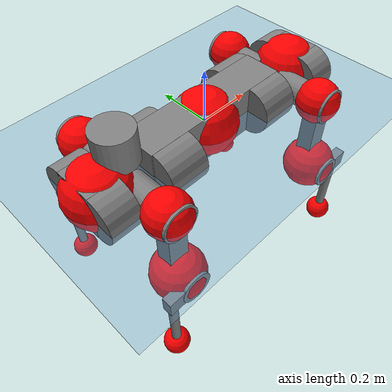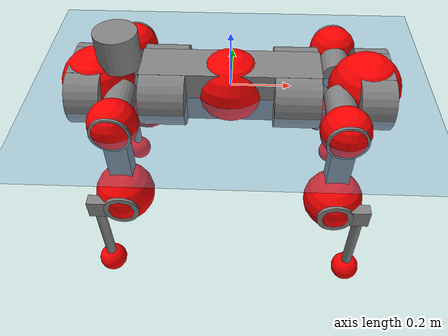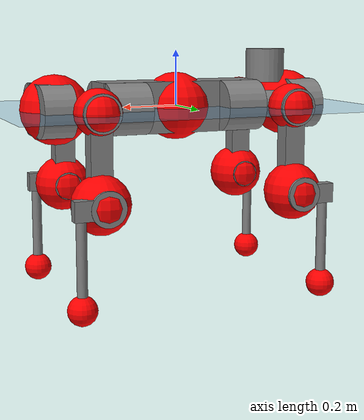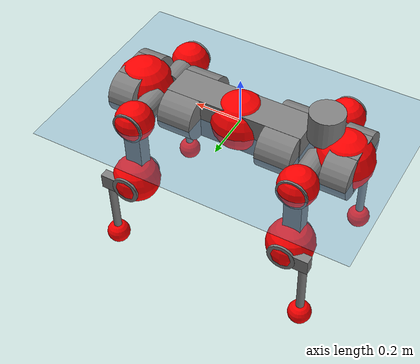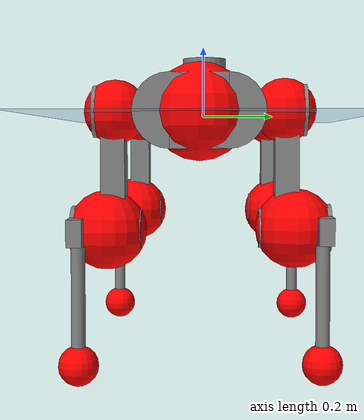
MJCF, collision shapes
<mujoco model="anymal_c">
  <compiler angle="radian" assetdir="assets" balanceinertia="true" inertiafromgeom="false"/>

  <option timestep="0.005" density="1.2" viscosity="2e-05"/>

  <size nkey="1"/>

  <visual>
    <quality shadowsize="8192"/>
    <map shadowclip="0.5"/>
  </visual>

  <default>
    <default class="/">
      <material specular="0" shininess="0.25"/>
      <geom contype="0" conaffinity="0" group="1" solref="-1000 -80"/>
      <site size="0.01 0.005 0.005" group="5"/>
      <general forcelimited="true" forcerange="-80 80" biastype="affine" gainprm="80" biasprm="0 -80 -2"/>
      <default class="anymal_c">
        <joint armature="0.01" damping="0.01" frictionloss="0.1"/>
        <default class="visual">
          <geom type="mesh" group="2"/>
          <default class="visual_zflip"/>
        </default>
        <default class="collision">
          <geom type="cylinder" group="3"/>
          <default class="foot">
            <geom size="0.03 0 0" type="sphere" condim="6" priority="1" friction="0.8 0.02 0.01" solimp="0.015 1 0.03"/>
          </default>
        </default>
      </default>
      <default class="reward_collision_sphere">
        <geom group="5" rgba="1 0 0 1"/>
      </default>
    </default>
  </default>

  <asset>
    <texture type="skybox" colorspace="auto" name="//unnamed_texture_0" builtin="gradient" rgb1="0.95 0.95 0.95" rgb2="0.95 0.95 0.95" width="100" height="600"/>
    <texture type="2d" colorspace="auto" name="texplane" builtin="checker" rgb1="0.345 0.575 0.748" rgb2="0.345 0.575 0.748" markrgb="1 1 1" width="512" height="512"/>
    <texture type="2d" colorspace="linear" name="base" file="base.png"/>
    <texture type="2d" colorspace="linear" name="top_shell" file="top_shell.png"/>
    <texture type="2d" colorspace="linear" name="bottom_shell" file="bottom_shell.png"/>
    <texture type="2d" colorspace="linear" name="remote" file="remote.png"/>
    <texture type="2d" colorspace="linear" name="hatch" file="hatch.png"/>
    <texture type="2d" colorspace="linear" name="handle" file="handle.png"/>
    <texture type="2d" colorspace="linear" name="face" file="face.png"/>
    <texture type="2d" colorspace="linear" name="battery" file="battery.png"/>
    <texture type="2d" colorspace="linear" name="lidar_cage" file="lidar_cage.png"/>
    <texture type="2d" colorspace="linear" name="depth_camera" file="depth_camera.png"/>
    <texture type="2d" colorspace="linear" name="wide_angle_camera" file="wide_angle_camera.png"/>
    <texture type="2d" colorspace="linear" name="lidar" file="lidar.png"/>
    <texture type="2d" colorspace="linear" name="drive" file="drive.png"/>
    <texture type="2d" colorspace="linear" name="hip_l" file="hip_l.png"/>
    <texture type="2d" colorspace="linear" name="shank_l" file="shank_l.png"/>
    <texture type="2d" colorspace="linear" name="foot" file="foot.png"/>
    <texture type="2d" colorspace="linear" name="thigh" file="thigh.png"/>
    <texture type="2d" colorspace="linear" name="shank_r" file="shank_r.png"/>
    <texture type="2d" colorspace="linear" name="hip_r" file="hip_r.png"/>
    <material name="MatPlane" class="/" texture="texplane" texuniform="true" texrepeat="2 2" specular="0.9" shininess="0.5"/>
    <material name="black_plastic" class="/" rgba="0.007 0.007 0.007 1"/>
    <material name="green" class="/" rgba="0.052 0.178 0.033 1"/>
    <material name="red" class="/" rgba="0.178 0.006 0.005 1"/>
    <material name="yellow" class="/" rgba="0.178 0.119 0.006 1"/>
    <material name="lwl" class="/" rgba="0.8 0.8 0.8 1"/>
    <material name="base" class="/" texture="base"/>
    <material name="top_shell" class="/" texture="top_shell"/>
    <material name="bottom_shell" class="/" texture="bottom_shell"/>
    <material name="hip_l" class="/" texture="hip_l"/>
    <material name="thigh" class="/" texture="thigh"/>
    <material name="shank_l" class="/" texture="shank_l"/>
    <material name="foot" class="/" texture="foot"/>
    <material name="hip_r" class="/" texture="hip_r"/>
    <material name="shank" class="/" texture="shank_r"/>
    <material name="hatch" class="/" texture="hatch"/>
    <material name="remote" class="/" texture="remote"/>
    <material name="handle" class="/" texture="handle"/>
    <material name="face" class="/" texture="face"/>
    <material name="depth_camera" class="/" texture="depth_camera"/>
    <material name="wide_angle_camera" class="/" texture="wide_angle_camera"/>
    <material name="battery" class="/" texture="battery"/>
    <material name="lidar_cage" class="/" texture="lidar_cage"/>
    <material name="lidar" class="/" texture="lidar"/>
    <material name="drive" class="/" texture="drive"/>
    <mesh name="base_0" class="/" file="base_0.obj"/>
    <mesh name="base_1" class="/" file="base_1.obj"/>
    <mesh name="base_2" class="/" file="base_2.obj"/>
    <mesh name="base_3" class="/" file="base_3.obj"/>
    <mesh name="base_4" class="/" file="base_4.obj"/>
    <mesh name="base_5" class="/" file="base_5.obj"/>
    <mesh name="top_shell" class="/" file="top_shell.obj"/>
    <mesh name="bottom_shell" class="/" file="bottom_shell.obj"/>
    <mesh name="remote" class="/" file="remote.obj"/>
    <mesh name="handle" class="/" file="handle.obj"/>
    <mesh name="face" class="/" file="face.obj"/>
    <mesh name="wide_angle_camera" class="/" file="wide_angle_camera.obj"/>
    <mesh name="depth_camera" class="/" file="depth_camera.obj"/>
    <mesh name="battery" class="/" file="battery.obj"/>
    <mesh name="lidar_cage" class="/" file="lidar_cage.obj"/>
    <mesh name="lidar" class="/" file="lidar.obj"/>
    <mesh name="drive" class="/" file="drive.obj"/>
    <mesh name="hip_l" class="/" file="hip_l.obj"/>
    <mesh name="thigh" class="/" file="thigh.obj"/>
    <mesh name="shank_l" class="/" file="shank_l.obj"/>
    <mesh name="foot" class="/" file="foot.obj"/>
    <mesh name="hip_r" class="/" file="hip_r.obj"/>
    <mesh name="hatch" class="/" file="hatch.obj"/>
    <mesh name="shank_r" class="/" file="shank_r.obj"/>
  </asset>

  <worldbody>
    <geom name="floor" class="/" size="100 100 0.125" type="plane" group="0" material="MatPlane"/>
    <light name="toplight_shadow" class="/" pos="0 0 5" dir="0.0990148 0.0990148 -0.990148" type="directional" ambient="0.04 0.04 0.04" diffuse="0.55 0.55 0.55" specular="0.12 0.12 0.12"/>
    <light name="toplight_fill" class="/" pos="0 0 5" dir="0.0990148 0.0990148 -0.990148" type="directional" castshadow="false" ambient="0.04 0.04 0.04" diffuse="0.3 0.3 0.3" specular="0.08 0.08 0.08"/>
    <body name="trunk" childclass="anymal_c" pos="0.0002099 -0.00199309 0.000327364" quat="1 1.22548e-05 -2.29732e-05 1.50859e-05">
      <inertial pos="0.00129212 -0.00236844 0.0529413" quat="0.496575 0.500645 0.510222 0.492384" mass="18.941" diaginertia="0.600229 0.57824 0.267802"/>
      <joint name="//unnamed_joint_0" type="free" armature="0" damping="0" frictionloss="0"/>
      <geom name="//unnamed_geom_1" class="visual" material="green" mesh="base_0"/>
      <geom name="//unnamed_geom_2" class="visual" material="yellow" mesh="base_1"/>
      <geom name="//unnamed_geom_3" class="visual" material="red" mesh="base_2"/>
      <geom name="//unnamed_geom_4" class="visual" material="black_plastic" mesh="base_3"/>
      <geom name="//unnamed_geom_5" class="visual" material="lwl" mesh="base_4"/>
      <geom name="//unnamed_geom_6" class="visual" material="base" mesh="base_5"/>
      <geom name="trunk_1" class="collision" size="0.292625 0.0706337 0.0908147" type="box"/>
      <geom name="trunk_2" class="collision" size="0.0908147 0.0731563" pos="0.215756 0.0690828 0" quat="0.707107 0 0.707107 0"/>
      <geom name="trunk_3" class="collision" size="0.0908147 0.0731563" pos="-0.215756 0.0690828 0" quat="0.707107 0 0.707107 0"/>
      <geom name="trunk_4" class="collision" size="0.0908147 0.0731563" pos="0.215756 -0.0690828 0" quat="0.707107 0 0.707107 0"/>
      <geom name="trunk_5" class="collision" size="0.0908147 0.0731563" pos="-0.215756 -0.0690828 0" quat="0.707107 0 0.707107 0"/>
      <geom name="//unnamed_geom_12" class="visual" material="top_shell" mesh="top_shell"/>
      <geom name="//unnamed_geom_13" class="visual" material="bottom_shell" mesh="bottom_shell"/>
      <geom name="//unnamed_geom_14" class="visual" material="remote" mesh="remote"/>
      <geom name="//unnamed_geom_15" class="visual" material="handle" mesh="handle"/>
      <geom name="//unnamed_geom_16" class="visual" pos="0.411177 0 0" quat="1 0 0 0" material="face" mesh="face"/>
      <geom name="trunk_6" class="collision" size="0.0554979 0.0706337 0.0908147" pos="0.465736 0 0" type="box"/>
      <geom name="//unnamed_geom_18" class="collision" size="0.0908147 0.0554979" pos="0.465736 0.0690828 0" quat="0.707107 0 0.707107 0"/>
      <geom name="//unnamed_geom_19" class="collision" size="0.0908147 0.0554979" pos="0.465736 -0.0690828 0" quat="0.707107 0 0.707107 0"/>
      <geom name="//unnamed_geom_20" class="visual" pos="0.457951 0 -0.0310376" quat="0.965926 0 0.258819 0" material="depth_camera" mesh="depth_camera"/>
      <geom name="//unnamed_geom_21" class="visual" pos="0.508887 0 0.0156927" material="wide_angle_camera" mesh="wide_angle_camera"/>
      <geom name="//unnamed_geom_22" class="visual_zflip" pos="-0.411177 0 0" quat="0 0 0 1" material="face" mesh="face"/>
      <geom name="trunk_7" class="collision" size="0.0554979 0.0706337 0.0908147" pos="-0.465736 0 0" quat="0 0 0 1" type="box"/>
      <geom name="//unnamed_geom_24" class="collision" size="0.0908147 0.0554979" pos="-0.465736 -0.0690828 0" quat="0 -0.707107 0 0.707107"/>
      <geom name="//unnamed_geom_25" class="collision" size="0.0908147 0.0554979" pos="-0.465736 0.0690828 0" quat="0 -0.707107 0 0.707107"/>
      <geom name="//unnamed_geom_26" class="visual" pos="-0.457951 0 -0.0310376" quat="0 -0.258819 0 0.965926" material="depth_camera" mesh="depth_camera"/>
      <geom name="//unnamed_geom_27" class="visual_zflip" pos="-0.508887 0 0.0156927" quat="0 0 0 1" material="wide_angle_camera" mesh="wide_angle_camera"/>
      <geom name="//unnamed_geom_28" class="visual" material="battery" mesh="battery"/>
      <geom name="//unnamed_geom_29" class="visual" pos="0 0.0753938 0.0300246" quat="0.683013 -0.183013 0.183013 0.683013" material="depth_camera" mesh="depth_camera"/>
      <geom name="//unnamed_geom_30" class="visual" pos="0 -0.0753938 0.0300246" quat="0.683013 0.183013 0.183013 -0.683013" material="depth_camera" mesh="depth_camera"/>
      <geom name="//unnamed_geom_31" class="visual" pos="-0.361082 0 0.0770484" quat="1 0 0 0" material="lidar_cage" mesh="lidar_cage"/>
      <geom name="trunk_8" class="collision" size="0.0706337 0.0605432" pos="-0.361082 0 0.139945"/>
      <geom name="//unnamed_geom_33" class="visual" pos="-0.361082 -1.99768e-06 0.149065" quat="0.707107 0 0 -0.707107" material="lidar" mesh="lidar"/>
      <geom name="//unnamed_geom_34" class="visual" pos="0.297496 0.102659 -1.05882e-09" quat="0.258819 0.965926 0 0" material="drive" mesh="drive"/>
      <geom name="//unnamed_geom_35" class="visual" pos="0.297496 -0.102659 1.05882e-09" quat="0.258819 -0.965926 0 0" material="drive" mesh="drive"/>
      <geom name="//unnamed_geom_36" class="visual" pos="-0.297496 0.102659 1.05882e-09" quat="0 0 0.965926 -0.258819" material="drive" mesh="drive"/>
      <geom name="//unnamed_geom_37" class="visual" pos="-0.297496 -0.102659 -1.05882e-09" quat="0 0 -0.965926 -0.258819" material="drive" mesh="drive"/>
      <geom name="//unnamed_geom_38" class="visual" pos="0.11507 0 0.0765243" quat="1 0 0 0" material="hatch" mesh="hatch"/>
      <geom name="//unnamed_geom_39" class="reward_collision_sphere" size="0.121086"/>
      <geom name="//unnamed_geom_40" class="reward_collision_sphere" size="0.121086" pos="0.446392 0 0"/>
      <geom name="//unnamed_geom_41" class="reward_collision_sphere" size="0.121086" pos="-0.446392 0 0"/>
      <site name="imu" pos="0.256092 0.011343 0.0385802" size="0.0100905"/>
      <camera name="track" pos="0 -1.9738 0" quat="0.707107 0.707107 0 0" mode="trackcom"/>
      <camera name="ego_camera" pos="0.446392 0 -0.0419311" quat="-0.5 -0.5 0.5 0.5"/>
      <body name="LF_HIP" pos="0.299279 0.105795 0.00266413" quat="0.258596 0.965985 -0.000594077 -0.000746416">
        <inertial pos="0.0565914 -0.0146256 -0.00858632" quat="-0.127634 0.709402 -0.135352 0.679807" mass="2.77809" diaginertia="0.00561756 0.004452 0.0041848"/>
        <joint name="LF_HAA" pos="0 0 0" axis="0.999998 0.00128916 0.00162252" range="-0.667076 0.492055" armature="0.00974534" damping="0" frictionloss="0.107611"/>
        <geom name="//unnamed_geom_42" class="visual" pos="0 -6.22854e-05 1.02303e-05" quat="0.258819 -0.965926 0 0" material="hip_l" mesh="hip_l"/>
        <geom name="//unnamed_geom_43" class="visual" pos="0.0594198 -0.0719545 -0.041997" quat="0.183013 -0.683013 0.683013 0.183013" material="drive" mesh="drive"/>
        <geom name="//unnamed_geom_44" class="collision" size="0.0504526 0.0706337" pos="0.0594198 -0.0118031 -0.00723836" quat="-0.353553 -0.612372 0.612372 -0.353553"/>
        <body name="LF_THIGH" pos="0.059701 -0.0694312 -0.0435919" quat="0.183072 -0.683175 0.682626 0.183787">
          <inertial pos="0.0324171 0.000923511 -0.257955" quat="0.993668 0.00464733 -0.0816175 0.0770736" mass="3.15404" diaginertia="0.0293281 0.0281705 0.00539869"/>
          <joint name="LF_HFE" pos="0 0 0" axis="0.999949 -0.00304719 -0.00966601" range="-3.1474 3.19134" armature="0.0112061" damping="0.00199135" frictionloss="0.0973873"/>
          <geom name="//unnamed_geom_45" class="visual" pos="0.000101167 1.59416e-07 0" quat="0.707107 0 0 -0.707107" material="thigh" mesh="thigh"/>
          <geom name="//unnamed_geom_46" class="collision" size="0.0655884 0.0403621" pos="0.0396793 0 0" quat="0.5 0.5 -0.5 -0.5"/>
          <geom name="//unnamed_geom_47" class="collision" size="0.0378395 0.0302716 0.142593" pos="0.0297595 0 -0.148136" quat="0.707107 0 0 -0.707107" type="box"/>
          <geom name="//unnamed_geom_48" class="visual" pos="0.0994958 0 -0.298759" quat="1 0 0 0" material="drive" mesh="drive"/>
          <geom name="//unnamed_geom_49" class="collision" size="0.0504526 0.0706337" pos="0.0300571 0 -0.298759" quat="0.707107 0 0.707107 0"/>
          <geom name="//unnamed_geom_50" class="reward_collision_sphere" size="0.0807242" pos="0.0247996 0 0"/>
          <body name="LF_SHANK" pos="0.100903 -0.00283355 -0.298936" quat="1 -0.000250336 -0.000156014 3.01936e-06">
            <inertial pos="0.00663385 -0.0603389 -0.0872528" quat="0.992914 -0.116205 -0.00145744 -0.0248154" mass="0.603303" diaginertia="0.00949762 0.0089061 0.0013648"/>
            <joint name="LF_KFE" pos="0 0 0" axis="1 -3.03262e-05 -0.00058982" range="-3.19387 3.13285" armature="0.00958857" damping="0.00889505" frictionloss="0.0997488"/>
            <geom name="//unnamed_geom_51" class="visual" pos="3.29884e-05 0.000175896 0" quat="0.707107 0 0 -0.707107" material="shank_l" mesh="shank_l"/>
            <geom name="LF_kfe_act" class="collision" size="0.0605432 0.0201811" pos="0.0198397 0 0" quat="0.5 0.5 -0.5 -0.5"/>
            <geom name="//unnamed_geom_53" class="collision" size="0.0580195 0.0340555 0.019172" pos="0.0198397 -0.0567456 0" quat="0.5 0.5 -0.5 -0.5" type="box"/>
            <geom name="//unnamed_geom_54" class="visual" pos="0.0129454 -0.086741 -0.354287" quat="0.382683 0 0 -0.92388" material="foot" mesh="foot"/>
            <geom name="LF_calf" class="collision" size="0.0176584 0.142531" pos="0.0129454 -0.0867977 -0.177143" quat="0.707107 0 0 -0.707107"/>
            <geom name="LF_foot" class="foot" size="0.0302906" pos="0.0129454 -0.0867977 -0.3307" quat="0.707107 0 0 -0.707107"/>
            <geom name="//unnamed_geom_57" class="reward_collision_sphere" size="0.100905" pos="-0.0495991 0 0"/>
            <geom name="//unnamed_geom_58" class="reward_collision_sphere" size="0.0504526" pos="0.0129454 -0.0867977 -0.3307"/>
            <site name="LF_foot" class="foot" pos="0.0129454 -0.0867977 -0.3307" quat="0.707107 0 0 -0.707107" size="0.0100905"/>
          </body>
        </body>
      </body>
      <body name="RF_HIP" pos="0.298612 -0.103866 0.000895331" quat="0.258704 -0.965957 0.000185144 8.9262e-05">
        <inertial pos="0.0571737 0.0143278 -0.00981996" quat="0.134019 0.679647 0.130287 0.709327" mass="2.78272" diaginertia="0.00572781 0.00447828 0.00429753"/>
        <joint name="RF_HAA" pos="0 0 0" axis="0.999964 0.00412963 -0.00744489" range="-0.493702 0.720672" armature="0.00955111" damping="0.00451195" frictionloss="0.0966589"/>
        <geom name="//unnamed_geom_59" class="visual" pos="0 6.22849e-05 1.02303e-05" quat="0.258819 0.965926 0 0" material="hip_r" mesh="hip_r"/>
        <geom name="//unnamed_geom_60" class="visual" pos="0.0594198 0.0719545 -0.041997" quat="0.183013 0.683013 0.683013 -0.183013" material="drive" mesh="drive"/>
        <geom name="//unnamed_geom_61" class="collision" size="0.0504526 0.0706337" pos="0.0594198 0.0118031 -0.00723836" quat="-0.353553 0.612372 0.612372 0.353553"/>
        <body name="RF_THIGH" pos="0.0622979 0.0740756 -0.0436844" quat="0.18287 0.683005 0.683028 -0.183128">
          <inertial pos="0.0306138 -0.00268675 -0.257864" quat="0.992902 -0.00519956 -0.0829904 0.0850399" mass="3.30881" diaginertia="0.0300406 0.0287875 0.00549071"/>
          <joint name="RF_HFE" pos="0 0 0" axis="0.999996 0.000523365 0.0029527" range="-3.19601 3.13624" armature="0.0101581" damping="0.00454169" frictionloss="0.101086"/>
          <geom name="//unnamed_geom_62" class="visual" pos="0.000101167 1.59416e-07 0" quat="0.707107 0 0 -0.707107" material="thigh" mesh="thigh"/>
          <geom name="//unnamed_geom_63" class="collision" size="0.0655884 0.0403621" pos="0.0396793 0 0" quat="0.5 0.5 0.5 0.5"/>
          <geom name="//unnamed_geom_64" class="collision" size="0.0378395 0.0302716 0.142593" pos="0.0297595 0 -0.148136" quat="0.707107 0 0 0.707107" type="box"/>
          <geom name="//unnamed_geom_65" class="visual" pos="0.0994958 0 -0.298759" quat="1 0 0 0" material="drive" mesh="drive"/>
          <geom name="//unnamed_geom_66" class="collision" size="0.0504526 0.0706337" pos="0.0300571 0 -0.298759" quat="0.707107 0 0.707107 0"/>
          <geom name="//unnamed_geom_67" class="reward_collision_sphere" size="0.0807242" pos="0.0247996 0 0"/>
          <body name="RF_SHANK" pos="0.0968294 -0.000569659 -0.299705" quat="0.999999 1.28877e-05 -0.00100359 -0.000739621">
            <inertial pos="0.0050237 0.0604747 -0.0828448" quat="0.992654 0.117205 -0.000352093 0.0300033" mass="0.608167" diaginertia="0.0096563 0.00867642 0.00140161"/>
            <joint name="RF_KFE" pos="0 0 0" axis="0.999895 0.0114075 -0.00892281" range="-3.15499 3.12959" armature="0.0113621" damping="0.0230392" frictionloss="0.0888722"/>
            <geom name="//unnamed_geom_68" class="visual" pos="3.29882e-05 -0.000175896 0" quat="0.707107 0 0 0.707107" material="shank" mesh="shank_r"/>
            <geom name="RF_kfe_act" class="collision" size="0.0605432 0.0201811" pos="0.0198397 0 0" quat="0.5 0.5 0.5 0.5"/>
            <geom name="//unnamed_geom_70" class="collision" size="0.0580195 0.0340555 0.019172" pos="0.0198397 0.0567456 0" quat="0.5 0.5 0.5 0.5" type="box"/>
            <geom name="//unnamed_geom_71" class="visual" pos="0.0129454 0.086741 -0.354287" quat="0.382683 0 0 0.92388" material="foot" mesh="foot"/>
            <geom name="RF_calf" class="collision" size="0.0176584 0.142531" pos="0.0129454 0.0867977 -0.177143" quat="0.707107 0 0 0.707107"/>
            <geom name="RF_foot" class="foot" size="0.0281448" pos="0.0129454 0.0867977 -0.3307" quat="0.707107 0 0 0.707107"/>
            <geom name="//unnamed_geom_74" class="reward_collision_sphere" size="0.100905" pos="-0.0495991 0 0"/>
            <geom name="//unnamed_geom_75" class="reward_collision_sphere" size="0.0504526" pos="0.0129454 0.0867977 -0.3307"/>
            <site name="RF_foot" class="foot" pos="0.0129454 0.0867977 -0.3307" quat="0.707107 0 0 0.707107" size="0.0100905"/>
          </body>
        </body>
      </body>
      <body name="LH_HIP" pos="-0.297936 0.10202 -0.00102262" quat="-0.000298464 0.000122749 0.965955 -0.25871">
        <inertial pos="0.0560147 0.012617 -0.00833751" quat="0.138605 0.675894 0.127844 0.712469" mass="2.80408" diaginertia="0.00560474 0.00457963 0.00415889"/>
        <joint name="LH_HAA" pos="0 0 0" axis="0.999982 -0.00198391 0.00570799" stiffness="0.000419122" range="-0.511652 0.7336" armature="0.0102657" damping="0.0128252" frictionloss="0.096747"/>
        <geom name="//unnamed_geom_76" class="visual" pos="0 6.22849e-05 1.02303e-05" quat="-0.258819 -0.965926 0 0" material="hip_r" mesh="hip_r"/>
        <geom name="//unnamed_geom_77" class="visual" pos="0.0594198 0.0719545 -0.041997" quat="0.183013 0.683013 0.683013 -0.183013" material="drive" mesh="drive"/>
        <geom name="//unnamed_geom_78" class="collision" size="0.0504526 0.0706337" pos="0.0594198 0.0118031 -0.00723836" quat="-0.353553 0.612372 0.612372 0.353553"/>
        <body name="LH_THIGH" pos="0.0573495 0.0715699 -0.0458988" quat="0.18292 0.683092 0.682871 -0.183338">
          <inertial pos="0.0302739 -1.87569e-05 -0.260028" quat="0.992961 -0.00804837 -0.0801059 0.0868726" mass="3.22835" diaginertia="0.0291714 0.0275785 0.00522675"/>
          <joint name="LH_HFE" pos="0 0 0" axis="0.999998 0.00107733 -0.0018049" range="-3.18381 3.15889" armature="0.0103777" damping="0" frictionloss="0.0996075"/>
          <geom name="//unnamed_geom_79" class="visual" pos="0.000101167 1.59416e-07 0" quat="0.707107 0 0 -0.707107" material="thigh" mesh="thigh"/>
          <geom name="//unnamed_geom_80" class="collision" size="0.0655884 0.0403621" pos="0.0396793 0 0" quat="0.5 0.5 -0.5 -0.5"/>
          <geom name="//unnamed_geom_81" class="collision" size="0.0378395 0.0302716 0.142593" pos="0.0297595 0 -0.148136" quat="0.707107 0 0 -0.707107" type="box"/>
          <geom name="//unnamed_geom_82" class="visual" pos="0.0994958 0 -0.298759" quat="1 0 0 0" material="drive" mesh="drive"/>
          <geom name="//unnamed_geom_83" class="collision" size="0.0504526 0.0706337" pos="0.0300571 0 -0.298759" quat="0.707107 0 0.707107 0"/>
          <geom name="//unnamed_geom_84" class="reward_collision_sphere" size="0.0807242" pos="0.0247996 0 0"/>
          <body name="LH_SHANK" pos="0.0983602 -0.0026317 -0.300112" quat="1 0.000118116 -0.000354214 7.17214e-05">
            <inertial pos="0.00509215 0.0602574 -0.0839333" quat="0.993231 0.113333 -5.02309e-05 0.0254396" mass="0.618167" diaginertia="0.0101688 0.00867986 0.00143506"/>
            <joint name="LH_KFE" pos="0 0 0" axis="0.999906 0.00283145 0.0134271" range="-3.09143 3.10191" armature="0.0102897" damping="0.00789655" frictionloss="0.101178"/>
            <geom name="//unnamed_geom_85" class="visual" pos="3.29882e-05 -0.000175896 0" quat="-0.707107 0 0 -0.707107" material="shank" mesh="shank_r"/>
            <geom name="LH_kfe_act" class="collision" size="0.0605432 0.0201811" pos="0.0198397 0 0" quat="0.5 0.5 -0.5 -0.5"/>
            <geom name="//unnamed_geom_87" class="collision" size="0.0580195 0.0340555 0.019172" pos="0.0198397 0.0567456 0" quat="0.5 0.5 -0.5 -0.5" type="box"/>
            <geom name="//unnamed_geom_88" class="visual" pos="0.0129454 0.086741 -0.354287" quat="-0.382683 0 0 -0.92388" material="foot" mesh="foot"/>
            <geom name="LH_calf" class="collision" size="0.0176584 0.142531" pos="0.0129454 0.0867977 -0.177143" quat="0.707107 0 0 -0.707107"/>
            <geom name="LH_foot" class="foot" size="0.0311898" pos="0.0129454 0.0867977 -0.3307" quat="0.707107 0 0 -0.707107"/>
            <geom name="//unnamed_geom_91" class="reward_collision_sphere" size="0.100905" pos="-0.0495991 0 0"/>
            <geom name="//unnamed_geom_92" class="reward_collision_sphere" size="0.0504526" pos="0.0129454 0.0867977 -0.3307"/>
            <site name="LH_foot" class="foot" pos="0.0129454 0.0867977 -0.3307" quat="0.707107 0 0 -0.707107" size="0.0100905"/>
          </body>
        </body>
      </body>
      <body name="RH_HIP" pos="-0.29855 -0.100833 0.000667627" quat="0.000839858 0.00059038 -0.965895 -0.258931">
        <inertial pos="0.0551526 -0.0128424 -0.0102154" quat="-0.12889 0.708765 -0.130549 0.681173" mass="2.89905" diaginertia="0.00580477 0.00460076 0.00433688"/>
        <joint name="RH_HAA" pos="0 0 0" axis="0.999937 -0.00917491 -0.00639149" range="-0.717694 0.44051" armature="0.0101279" damping="0.0142324" frictionloss="0.101559"/>
        <geom name="//unnamed_geom_93" class="visual" pos="0 -6.22854e-05 1.02303e-05" quat="-0.258819 0.965926 0 0" material="hip_l" mesh="hip_l"/>
        <geom name="//unnamed_geom_94" class="visual" pos="0.0594198 -0.0719545 -0.041997" quat="-0.183013 0.683013 -0.683013 -0.183013" material="drive" mesh="drive"/>
        <geom name="//unnamed_geom_95" class="collision" size="0.0504526 0.0706337" pos="0.0594198 -0.0118031 -0.00723836" quat="0.353553 0.612372 -0.612372 0.353553"/>
        <body name="RH_THIGH" pos="0.0599226 -0.0697413 -0.0436646" quat="-0.18425 0.682838 -0.683017 -0.182404">
          <inertial pos="0.0306364 -0.00262276 -0.25642" quat="0.992594 -0.0055099 -0.0833845 0.0881745" mass="3.14218" diaginertia="0.0288871 0.027834 0.00524304"/>
          <joint name="RH_HFE" pos="0 0 0" axis="0.999924 -0.01189 -0.00340465" range="-3.15646 3.15974" armature="0.00977462" damping="0.0109979" frictionloss="0.0973183"/>
          <geom name="//unnamed_geom_96" class="visual" pos="0.000101167 1.59416e-07 0" quat="0.707107 0 0 -0.707107" material="thigh" mesh="thigh"/>
          <geom name="//unnamed_geom_97" class="collision" size="0.0655884 0.0403621" pos="0.0396793 0 0" quat="0.5 0.5 0.5 0.5"/>
          <geom name="//unnamed_geom_98" class="collision" size="0.0378395 0.0302716 0.142593" pos="0.0297595 0 -0.148136" quat="0.707107 0 0 0.707107" type="box"/>
          <geom name="//unnamed_geom_99" class="visual" pos="0.0994958 0 -0.298759" quat="1 0 0 0" material="drive" mesh="drive"/>
          <geom name="//unnamed_geom_100" class="collision" size="0.0504526 0.0706337" pos="0.0300571 0 -0.298759" quat="0.707107 0 0.707107 0"/>
          <geom name="//unnamed_geom_101" class="reward_collision_sphere" size="0.0807242" pos="0.0247996 0 0"/>
          <body name="RH_SHANK" pos="0.0965808 -0.000805141 -0.299348" quat="1 9.08731e-05 4.65091e-05 0.000110674">
            <inertial pos="0.00810645 -0.0604473 -0.0835675" quat="0.992977 -0.115435 -0.00432062 -0.0255358" mass="0.598818" diaginertia="0.0100516 0.00873678 0.00139718"/>
            <joint name="RH_KFE" pos="0 0 0" axis="0.999966 -0.00818117 0.000562803" range="-3.16879 3.18789" armature="0.00880106" damping="0.0090478" frictionloss="0.0995791"/>
            <geom name="//unnamed_geom_102" class="visual" pos="3.29884e-05 0.000175896 0" quat="0.707107 0 0 -0.707107" material="shank_l" mesh="shank_l"/>
            <geom name="RH_kfe_act" class="collision" size="0.0605432 0.0201811" pos="0.0198397 0 0" quat="0.5 0.5 0.5 0.5"/>
            <geom name="//unnamed_geom_104" class="collision" size="0.0580195 0.0340555 0.019172" pos="0.0198397 -0.0567456 0" quat="0.5 0.5 0.5 0.5" type="box"/>
            <geom name="//unnamed_geom_105" class="visual" pos="0.0129454 -0.086741 -0.354287" quat="0.382683 0 0 -0.92388" material="foot" mesh="foot"/>
            <geom name="RH_calf" class="collision" size="0.0176584 0.142531" pos="0.0129454 -0.0867977 -0.177143" quat="0.707107 0 0 0.707107"/>
            <geom name="RH_foot" class="foot" size="0.0293637" pos="0.0129454 -0.0867977 -0.3307" quat="0.707107 0 0 0.707107"/>
            <geom name="//unnamed_geom_108" class="reward_collision_sphere" size="0.100905" pos="-0.0495991 0 0"/>
            <geom name="//unnamed_geom_109" class="reward_collision_sphere" size="0.0504526" pos="0.0129454 -0.0867977 -0.3307"/>
            <site name="RH_foot" class="foot" pos="0.0129454 -0.0867977 -0.3307" quat="0.707107 0 0 0.707107" size="0.0100905"/>
          </body>
        </body>
      </body>
    </body>
  </worldbody>

  <contact>
    <pair class="/" geom1="floor" geom2="LF_foot" name="//unnamed_contact_0"/>
    <pair class="/" geom1="floor" geom2="RF_foot" name="//unnamed_contact_1"/>
    <pair class="/" geom1="floor" geom2="LH_foot" name="//unnamed_contact_2"/>
    <pair class="/" geom1="floor" geom2="RH_foot" name="//unnamed_contact_3"/>
  </contact>

  <actuator>
    <general name="LF_HAA" class="/" joint="LF_HAA" forcerange="-88.9996 88.9996" gainprm="85.8309" biasprm="0 -85.8309 -2.03606"/>
    <general name="LF_HFE" class="/" joint="LF_HFE" forcerange="-77.6934 77.6934" gainprm="85.8309" biasprm="0 -85.8309 -2.03606"/>
    <general name="LF_KFE" class="/" joint="LF_KFE" forcerange="-84.1789 84.1789" gainprm="85.8309" biasprm="0 -85.8309 -2.03606"/>
    <general name="RF_HAA" class="/" joint="RF_HAA" forcerange="-89.3548 89.3548" gainprm="85.8309" biasprm="0 -85.8309 -2.03606"/>
    <general name="RF_HFE" class="/" joint="RF_HFE" forcerange="-90.3058 90.3058" gainprm="85.8309" biasprm="0 -85.8309 -2.03606"/>
    <general name="RF_KFE" class="/" joint="RF_KFE" forcerange="-85.5201 85.5201" gainprm="85.8309" biasprm="0 -85.8309 -2.03606"/>
    <general name="LH_HAA" class="/" joint="LH_HAA" forcerange="-82.8924 82.8924" gainprm="85.8309" biasprm="0 -85.8309 -2.03606"/>
    <general name="LH_HFE" class="/" joint="LH_HFE" forcerange="-78.1401 78.1401" gainprm="85.8309" biasprm="0 -85.8309 -2.03606"/>
    <general name="LH_KFE" class="/" joint="LH_KFE" forcerange="-81.2358 81.2358" gainprm="85.8309" biasprm="0 -85.8309 -2.03606"/>
    <general name="RH_HAA" class="/" joint="RH_HAA" forcerange="-72.982 72.982" gainprm="85.8309" biasprm="0 -85.8309 -2.03606"/>
    <general name="RH_HFE" class="/" joint="RH_HFE" forcerange="-81.5294 81.5294" gainprm="85.8309" biasprm="0 -85.8309 -2.03606"/>
    <general name="RH_KFE" class="/" joint="RH_KFE" forcerange="-80.4886 80.4886" gainprm="85.8309" biasprm="0 -85.8309 -2.03606"/>
  </actuator>

  <sensor>
    <gyro site="imu" name="imu_angular_velocity"/>
    <velocimeter site="imu" name="imu_linear_velocity"/>
    <framelinvel objtype="site" objname="LF_foot" name="LF_foot_global_linear_velocity"/>
    <framelinvel objtype="site" objname="RF_foot" name="RF_foot_global_linear_velocity"/>
    <framelinvel objtype="site" objname="LH_foot" name="LH_foot_global_linear_velocity"/>
    <framelinvel objtype="site" objname="RH_foot" name="RH_foot_global_linear_velocity"/>
  </sensor>

  <keyframe>
    <key name="home" qpos="0 0 0.55 1 0 0 0 0 0.4 -0.8 0 -0.4 0.8 0 -0.4 0.8 0 0.4 -0.8"/>
  </keyframe>
</mujoco>
